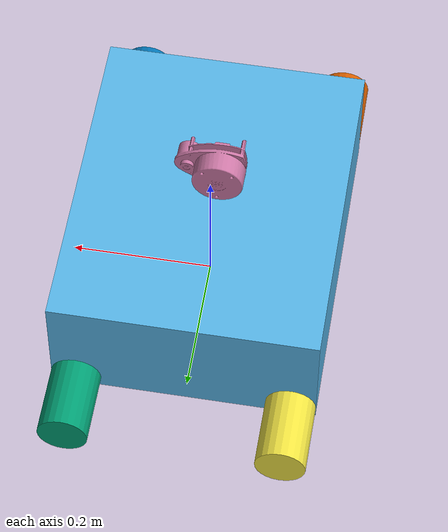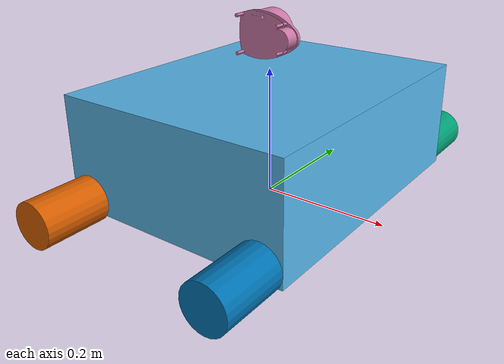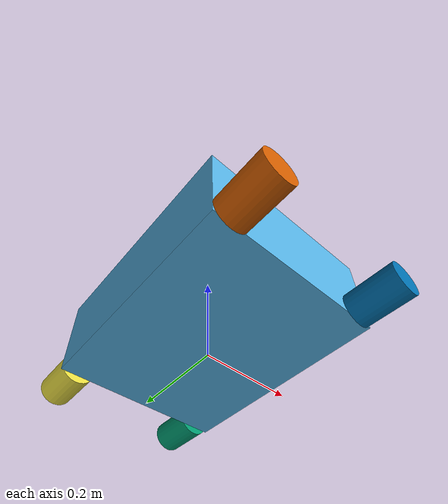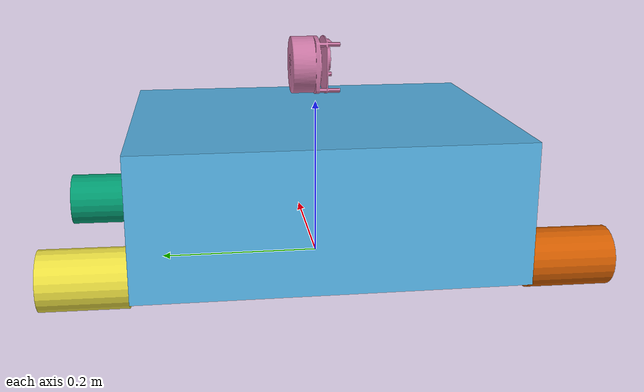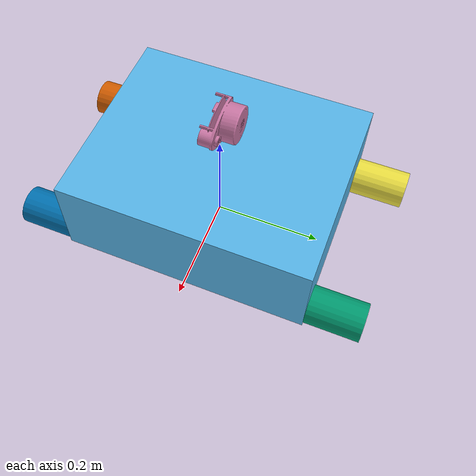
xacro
<?xml version='1.0'?>

<robot name="my_robot" xmlns:xacro="http://www.ros.org/wiki/xacro">

  <link name="robot_footprint"></link>

  <link name='chassis'>
    <pose>0 0 0.1 0 0 0</pose>

    <inertial>
      <mass value="50.0"/>
      <origin xyz="0 0 0" rpy=" 0 0 0"/>
      <inertia
          ixx="0.1" ixy="0" ixz="0"
          iyy="0.1" iyz="0"
          izz="0.1"
      />
    </inertial>

    <collision name='chassis_collision'>
      <origin xyz="0 0 0" rpy=" 0 0 0"/>
      <geometry>
        <box size="0.37 0.46 0.17"/>
      </geometry>
    </collision>

    <visual name='chassis_visual'>
      <origin xyz="0 0 0" rpy=" 0 0 0"/>
      <geometry>
        <box size="0.37 0.46 0.17"/>
      </geometry>
    </visual>
  </link>

  <joint name="robot_footprint_joint" type="fixed">
    <origin xyz="0 0 0.1" rpy="0 0 0" />
    <parent link="robot_footprint"/>
    <child link="chassis" />
  </joint>

    <!-- first right wheel Discribe our robot -->
    <link name='fright_wheel'>
      <pose>0 0 0 0 0 0</pose>

      <inertial>
      <mass value="1.0"/>

        <inertia
          ixx="0.1" ixy="0" ixz="0"
          iyy="0.1" iyz="0"
          izz="0.1"/>
      <origin xyz="0 0 0" rpy="1.578 0 0"/>

      </inertial>

      <visual name='fright_wheel_visual'>
        <origin xyz="0 0 0" rpy="1.578 0 0"/>

        <geometry>
          <cylinder  radius="0.035" length="0.1"/>
        </geometry>

      </visual>
      <collision name='fright_wheel_collision'>
      <origin xyz="0 0 0" rpy="1.578 0 0"/>

        <geometry>
          <cylinder  radius="0.035" length="0.1"/>
        </geometry>
      </collision>
    </link>

      <!-- second right wheel Discribe our robot -->
    <link name='sright_wheel'>
      <pose>0 0 0 0 0 0</pose>

      <inertial>
      <mass value="1.0"/>

        <inertia
          ixx="0.1" ixy="0" ixz="0"
          iyy="0.1" iyz="0"
          izz="0.1"/>
      <origin xyz="0 0 0" rpy="1.578 0 0"/>

      </inertial>

      <visual name='sright_wheel_visual'>
      <origin xyz="0 0 0" rpy="1.578 0 0"/>

      <geometry>
        <cylinder  radius="0.035" length="0.1"/>
      </geometry>

      </visual>
      <collision name='sright_wheel_collision'>
      <origin xyz="0 0 0" rpy="1.578 0 0"/>

        <geometry>
          <cylinder  radius="0.035" length="0.1"/>
        </geometry>
      </collision>
    </link>

<!-- first ledt wheel Discribe our robot -->
    <link name='fleft_wheel'>
      <pose>0 0 0 0 0 0</pose>

      <inertial>
      <mass value="1.0"/>

        <inertia
          ixx="0.1" ixy="0" ixz="0"
          iyy="0.1" iyz="0"
          izz="0.1"/>
      <origin xyz="0 0 0" rpy="1.578 0 0"/>

      </inertial>

      <visual name='fleft_wheel_visual'>
      <origin xyz="0 0 0" rpy="1.578 0 0"/>

      <geometry>
        <cylinder  radius="0.035" length="0.1"/>
      </geometry>

      </visual>
      <collision name='fleft_wheel_collision'>
      <origin xyz="0 0 0" rpy="1.578 0 0"/>

        <geometry>
          <cylinder  radius="0.035" length="0.1"/>
        </geometry>
      </collision>
    </link>

      <!-- second left wheel Discribe our robot -->
    <link name='sleft_wheel'>
      <pose>0 0 0 0 0 0</pose>

      <inertial>
      <mass value="1.0"/>

        <inertia
          ixx="0.1" ixy="0" ixz="0"
          iyy="0.1" iyz="0"
          izz="0.1"/>
      <origin xyz="0 0 0" rpy="1.578 0 0"/>

      </inertial>

      <visual name='sleft_wheel_visual'>
      <origin xyz="0 0 0" rpy="1.578 0 0"/>

      <geometry>
        <cylinder  radius="0.035" length="0.1"/>
      </geometry>

      </visual>
      <collision name='sleft_wheel_collision'>
      <origin xyz="0 0 0" rpy="1.578 0 0"/>

        <geometry>
          <cylinder  radius="0.035" length="0.1"/>
        </geometry>
      </collision>
    </link>

    <joint type="continuous" name="fright_wheel_joint">
    <origin xyz="0.15 0.28 -0.065" rpy="0 0 0"/>
    <child link="fright_wheel"/>
    <parent link="chassis"/>
    <axis xyz="0 1 0" rpy="0 0 0"/>
    <limit effort="10000" velocity="1000"/>
    <dynamics damping="1.0" friction="1.0"/>
    </joint>

    <joint type="continuous" name="sright_wheel_joint">
    <origin xyz="-0.15 0.28 -0.065" rpy="0 0 0"/>
    <child link="sright_wheel"/>
    <parent link="chassis"/>
    <axis xyz="0 1 0" rpy="0 0 0"/>
    <limit effort="10000" velocity="1000"/>
    <dynamics damping="1.0" friction="1.0"/>
    </joint>

    <joint type="continuous" name="fleft_wheel_joint">
      <origin xyz="0.15 -0.28 -0.065" rpy="0 0 0"/>
      <child link="fleft_wheel"/>
      <parent link="chassis"/>
      <axis xyz="0 1 0" rpy="0 0 0"/>
      <limit effort="10000" velocity="1000"/>
      <dynamics damping="1.0" friction="1.0"/>
    </joint>

    <joint type="continuous" name="sleft_wheel_joint">
    <origin xyz="-0.15 -0.28 -0.065" rpy="0 0 0"/>
    <child link="sleft_wheel"/>
    <parent link="chassis"/>
    <axis xyz="0 1 0" rpy="0 0 0"/>
    <limit effort="10000" velocity="1000"/>
    <dynamics damping="1.0" friction="1.0"/>
    </joint>

    <link name='laser_frame'>
   <pose>0 0 0 0 0 0</pose>
    <inertial>
      <mass value="1e-5"/>
      <origin xyz="0 0 0" rpy="0 0 0"/>
      <inertia
          ixx="1e-6" ixy="0" ixz="0"
          iyy="1e-6" iyz="0"
          izz="1e-6"
      />
    </inertial>

    <collision name='collision'>
      <origin xyz="0 0 0" rpy=" 0 0 0"/>
      <geometry>
        <box  size="0.1 0.1 0.1"/>
      </geometry>
    </collision>
    <visual name='laser_frame_visual'>
      <origin xyz="0 0 0" rpy=" 0 0 0"/>
      <geometry>
        <mesh filename="package://my_robot/meshes/rplidar.dae"/>
      </geometry>
    </visual>
  </link>
  <joint type="fixed" name="laser_frame_joint">
    <origin xyz="0 0 0.15" rpy="0 0 0"/>
    <child link="laser_frame"/>
    <parent link="chassis"/>
    <axis xyz="0 1 0" rpy="0 0 0"/>
    <limit effort="10000" velocity="1000"/>
    <dynamics damping="1.0" friction="1.0"/>
  </joint>

</robot>
